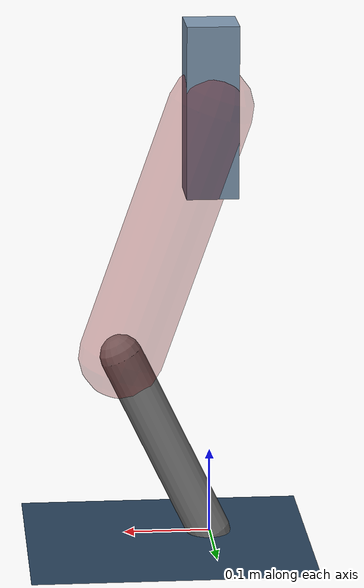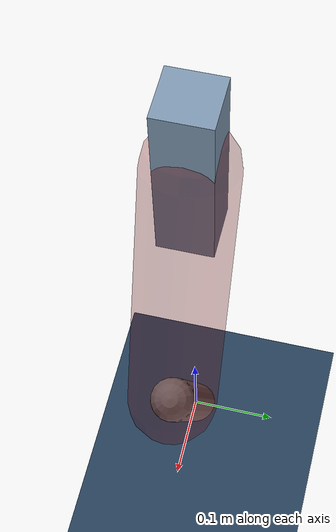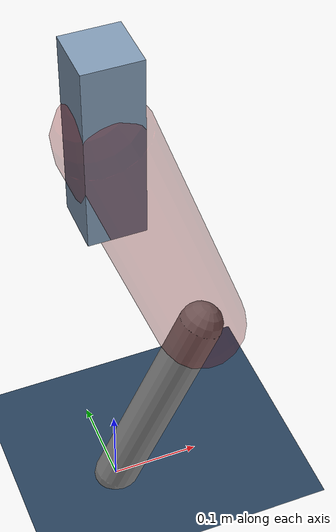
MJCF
<mujoco model="Hopper2D">
	<compiler inertiafromgeom="true" angle="radian" />
	<option timestep="0.001" integrator="implicit" cone="elliptic" solver="Newton" tolerance="1e-10" />

	<default>
		<geom contype="1" conaffinity="1" condim="3" friction="2 0.005 0.0001" solref="0.005 1" />
		<joint limited="true" damping="0.1" />
	</default>

	<asset>
		<texture name="skybox" type="skybox" builtin="gradient" rgb1=".4 .6 .8" rgb2="0 0 0" width="800" height="800" />
		<texture name="grid" type="2d" builtin="checker" rgb1=".1 .2 .3" rgb2=".2 .3 .4" width="300" height="300" mark="edge" markrgb=".2 .3 .4" />
		<material name="ground" texture="grid" texrepeat="1 1" texuniform="true" reflectance="0.1" />
		<material name="leg" rgba="0.5 0.6 0.7 1" />
	</asset>

	<worldbody>

		<geom name="floor" type="plane" size="5 5 0.25" material="ground" />

		<light directional="false" diffuse="0.8 0.8 0.8" specular="0.3 0.3 0.3" pos="0 0 2" dir="0 0 -1" />
		<light mode="targetbodycom" target="base" directional="false" diffuse="0.8 0.8 0.8" specular="0.3 0.3 0.3" pos="0 0 2" dir="0 0 -1" />

		<camera name="fixed" pos="0 -2 1" xyaxes="1 0 0 0 0 1" />
		<camera name="tracking" mode="trackcom" pos="0 -3 1" />

		<body name="root" pos="0 0 0.5101356209046785">
			<joint name="slide_x" type="slide" axis="1 0 0" range="-100 100" />
			<joint name="slide_z" type="slide" axis="0 0 1" range="0 10" />

			<body name="base" pos="0 0 0">
				<geom name="torso" type="box" size="0.03 0.03 0.1" mass="4.333" material="leg" />

				<body name="link1" pos="0 0 0" euler="0 1.2312241960092678 0">
					<joint type="hinge" axis="0 -1 0" pos="0 0 0" name="hinge1" limited="true" range="-3.14 3.14" stiffness="0" damping="0.1" />
					<geom name="thigh" type="capsule" fromto="0 0 0 0.31019775523689597 0 0" size="0.05" rgba="0.5 0 0 0.3" mass="1.016433939139619" />

					<body name="link2" pos="0.31019775523689597 0 0" euler="0 0.7827864630723146 0">
						<joint type="hinge" axis="0 -1 0" pos="0 0 0" name="hinge2" limited="true" range="-3.14 3.14" stiffness="0" damping="0.1" />
						<geom name="shank" type="capsule" fromto="0 0 0 0.24093019054040934 0 0" size="0.025" mass="0.43504415243232747" />

					</body>
				</body>
			</body>
		</body>
	</worldbody>

	<actuator>
		<motor name="torque1" joint="hinge1" ctrlrange="-283.8608277299934 283.8608277299934" ctrllimited="true" gear="1" />
		<motor name="torque2" joint="hinge2" ctrlrange="-89.14983137865956 89.14983137865956" ctrllimited="true" gear="1" />
	</actuator>
</mujoco>
